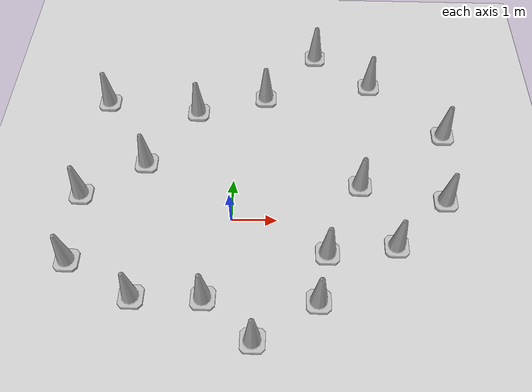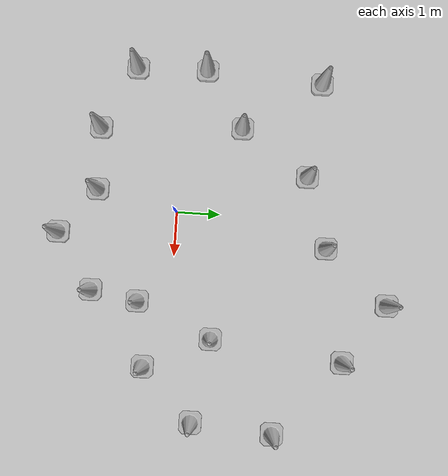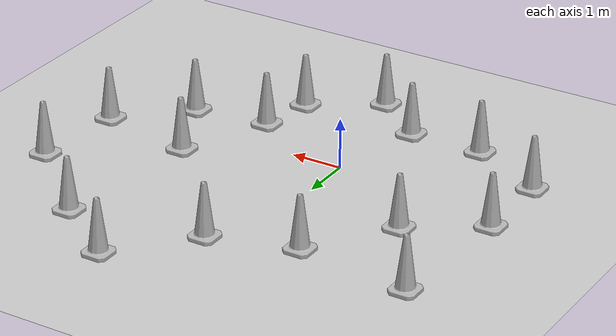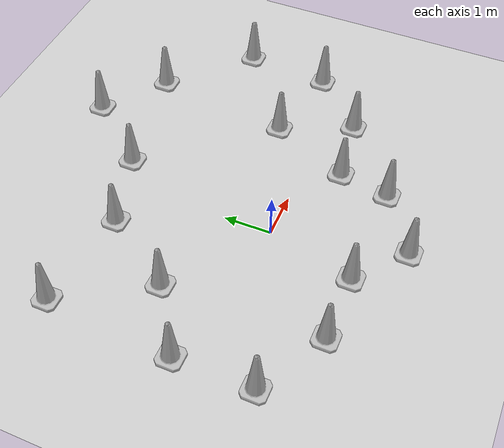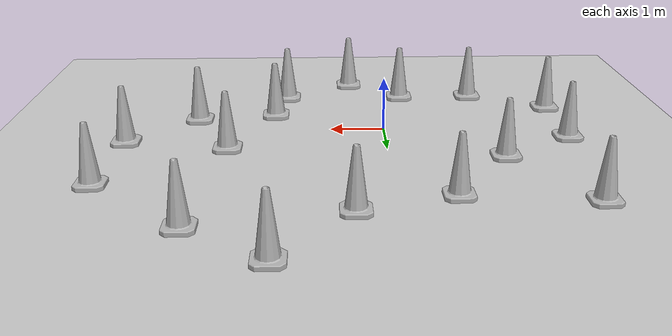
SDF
<sdf version="1.7">
 <world name="default">
  <light name="sun" type="directional">
   <pose>0 0 10 0 -0 0</pose>
   <diffuse>0.8 0.8 0.8 1</diffuse>
   <specular>0.2 0.2 0.2 1</specular>
   <attenuation>
    <range>1000</range>
    <constant>0.9</constant>
    <linear>0.01</linear>
    <quadratic>0.001</quadratic>
   </attenuation>
   <direction>-0.5 0.1 -0.9</direction>
   <spot><inner_angle>0</inner_angle><outer_angle>0</outer_angle><falloff>0</falloff></spot>
  </light>
  <model name="ground_plane">
   <static>1</static>
   <link name="link">
    <collision name="collision">
     <geometry><plane><normal>0 0 1</normal><size>100 100</size></plane></geometry>
     <surface>
      <contact><collide_bitmask>65535</collide_bitmask></contact>
      <friction><ode><mu>100</mu><mu2>50</mu2></ode></friction>
     </surface>
    </collision>
    <visual name="visual">
     <cast_shadows>0</cast_shadows>
     <geometry><plane><normal>0 0 1</normal><size>100 100</size></plane></geometry>
     <material>
      <script><uri>file://media/materials/scripts/gazebo.material</uri><name>Gazebo/Grey</name></script>
     </material>
    </visual>
   </link>
  </model>
  <gravity>0 0 -9.8</gravity>
  <magnetic_field>6e-06 2.3e-05 -4.2e-05</magnetic_field>
  <atmosphere type="adiabatic"/>
  <physics type="ode">
   <max_step_size>0.001</max_step_size>
   <real_time_factor>1</real_time_factor>
   <real_time_update_rate>1000</real_time_update_rate>
  </physics>
  <scene><ambient>0.4 0.4 0.4 1</ambient><background>0.7 0.7 0.7 1</background><shadows>1</shadows></scene>
  <audio><device>default</device></audio>
  <spherical_coordinates>
   <surface_model>EARTH_WGS84</surface_model>
   <latitude_deg>0</latitude_deg>
   <longitude_deg>0</longitude_deg>
   <elevation>0</elevation>
   <heading_deg>0</heading_deg>
  </spherical_coordinates>
  <model name="Construction Cone">
   <link name="link">
    <collision name="collision">
     <geometry>
      <mesh><scale>10 10 10</scale><uri>model://construction_cone/meshes/construction_cone.dae</uri></mesh>
     </geometry>
    </collision>
    <visual name="visual">
     <geometry>
      <mesh><scale>10 10 10</scale><uri>model://construction_cone/meshes/construction_cone.dae</uri></mesh>
     </geometry>
    </visual>
    <inertial>
     <inertia><ixx>1</ixx><ixy>0</ixy><ixz>0</ixz><iyy>1</iyy><iyz>0</iyz><izz>1</izz></inertia>
     <mass>1</mass>
    </inertial>
   </link>
   <pose>0.577825 -2.69799 -0 0 -0 0</pose>
  </model>
  <model name="Construction Cone_clone">
   <link name="link">
    <collision name="collision">
     <geometry>
      <mesh><scale>10 10 10</scale><uri>model://construction_cone/meshes/construction_cone.dae</uri></mesh>
     </geometry>
    </collision>
    <visual name="visual">
     <geometry>
      <mesh><scale>10 10 10</scale><uri>model://construction_cone/meshes/construction_cone.dae</uri></mesh>
     </geometry>
    </visual>
    <inertial>
     <inertia><ixx>1</ixx><ixy>0</ixy><ixz>0</ixz><iyy>1</iyy><iyz>0</iyz><izz>1</izz></inertia>
     <mass>1</mass>
    </inertial>
   </link>
   <pose>-1.90719 -1.86126 -0 0 -0 0</pose>
  </model>
  <model name="Construction Cone_clone_0">
   <link name="link">
    <collision name="collision">
     <geometry>
      <mesh><scale>10 10 10</scale><uri>model://construction_cone/meshes/construction_cone.dae</uri></mesh>
     </geometry>
    </collision>
    <visual name="visual">
     <geometry>
      <mesh><scale>10 10 10</scale><uri>model://construction_cone/meshes/construction_cone.dae</uri></mesh>
     </geometry>
    </visual>
    <inertial>
     <inertia><ixx>1</ixx><ixy>0</ixy><ixz>0</ixz><iyy>1</iyy><iyz>0</iyz><izz>1</izz></inertia>
     <mass>1</mass>
    </inertial>
   </link>
   <pose>-2.0434 1.43222 -8e-06 -5e-06 -0 -0</pose>
  </model>
  <model name="Construction Cone_clone_1">
   <link name="link">
    <collision name="collision">
     <geometry>
      <mesh><scale>10 10 10</scale><uri>model://construction_cone/meshes/construction_cone.dae</uri></mesh>
     </geometry>
    </collision>
    <visual name="visual">
     <geometry>
      <mesh><scale>10 10 10</scale><uri>model://construction_cone/meshes/construction_cone.dae</uri></mesh>
     </geometry>
    </visual>
    <inertial>
     <inertia><ixx>1</ixx><ixy>0</ixy><ixz>0</ixz><iyy>1</iyy><iyz>0</iyz><izz>1</izz></inertia>
     <mass>1</mass>
    </inertial>
   </link>
   <pose>1.87533 -1.86092 0 -0 -0 -0</pose>
  </model>
  <model name="Construction Cone_clone_2">
   <link name="link">
    <collision name="collision">
     <geometry>
      <mesh><scale>10 10 10</scale><uri>model://construction_cone/meshes/construction_cone.dae</uri></mesh>
     </geometry>
    </collision>
    <visual name="visual">
     <geometry>
      <mesh><scale>10 10 10</scale><uri>model://construction_cone/meshes/construction_cone.dae</uri></mesh>
     </geometry>
    </visual>
    <inertial>
     <inertia><ixx>1</ixx><ixy>0</ixy><ixz>0</ixz><iyy>1</iyy><iyz>0</iyz><izz>1</izz></inertia>
     <mass>1</mass>
    </inertial>
   </link>
   <pose>2.861 0.933479 -6e-06 -4e-06 0 0</pose>
  </model>
  <model name="Construction Cone_clone_3">
   <link name="link">
    <collision name="collision">
     <geometry>
      <mesh><scale>10 10 10</scale><uri>model://construction_cone/meshes/construction_cone.dae</uri></mesh>
     </geometry>
    </collision>
    <visual name="visual">
     <geometry>
      <mesh><scale>10 10 10</scale><uri>model://construction_cone/meshes/construction_cone.dae</uri></mesh>
     </geometry>
    </visual>
    <inertial>
     <inertia><ixx>1</ixx><ixy>0</ixy><ixz>0</ixz><iyy>1</iyy><iyz>0</iyz><izz>1</izz></inertia>
     <mass>1</mass>
    </inertial>
   </link>
   <pose>-3.37286 -1.08981 -0 0 -1e-06 0</pose>
  </model>
  <model name="Construction Cone_clone_4">
   <link name="link">
    <collision name="collision">
     <geometry>
      <mesh><scale>10 10 10</scale><uri>model://construction_cone/meshes/construction_cone.dae</uri></mesh>
     </geometry>
    </collision>
    <visual name="visual">
     <geometry>
      <mesh><scale>10 10 10</scale><uri>model://construction_cone/meshes/construction_cone.dae</uri></mesh>
     </geometry>
    </visual>
    <inertial>
     <inertia><ixx>1</ixx><ixy>0</ixy><ixz>0</ixz><iyy>1</iyy><iyz>0</iyz><izz>1</izz></inertia>
     <mass>1</mass>
    </inertial>
   </link>
   <pose>-3.3876 0.546983 -6e-06 -4e-06 0 0</pose>
  </model>
  <model name="Construction Cone_clone_5">
   <link name="link">
    <collision name="collision">
     <geometry>
      <mesh><scale>10 10 10</scale><uri>model://construction_cone/meshes/construction_cone.dae</uri></mesh>
     </geometry>
    </collision>
    <visual name="visual">
     <geometry>
      <mesh><scale>10 10 10</scale><uri>model://construction_cone/meshes/construction_cone.dae</uri></mesh>
     </geometry>
    </visual>
    <inertial>
     <inertia><ixx>1</ixx><ixy>0</ixy><ixz>0</ixz><iyy>1</iyy><iyz>0</iyz><izz>1</izz></inertia>
     <mass>1</mass>
    </inertial>
   </link>
   <pose>-0.456909 -1.84995 -0 0 -1e-06 0</pose>
  </model>
  <model name="Construction Cone_clone_6">
   <link name="link">
    <collision name="collision">
     <geometry>
      <mesh><scale>10 10 10</scale><uri>model://construction_cone/meshes/construction_cone.dae</uri></mesh>
     </geometry>
    </collision>
    <visual name="visual">
     <geometry>
      <mesh><scale>10 10 10</scale><uri>model://construction_cone/meshes/construction_cone.dae</uri></mesh>
     </geometry>
    </visual>
    <inertial>
     <inertia><ixx>1</ixx><ixy>0</ixy><ixz>0</ixz><iyy>1</iyy><iyz>0</iyz><izz>1</izz></inertia>
     <mass>1</mass>
    </inertial>
   </link>
   <pose>2.07887 -0.781898 -1e-05 -0 -0 -0</pose>
  </model>
  <model name="Construction Cone_clone_7">
   <link name="link">
    <collision name="collision">
     <geometry>
      <mesh><scale>10 10 10</scale><uri>model://construction_cone/meshes/construction_cone.dae</uri></mesh>
     </geometry>
    </collision>
    <visual name="visual">
     <geometry>
      <mesh><scale>10 10 10</scale><uri>model://construction_cone/meshes/construction_cone.dae</uri></mesh>
     </geometry>
    </visual>
    <inertial>
     <inertia><ixx>1</ixx><ixy>0</ixy><ixz>0</ixz><iyy>1</iyy><iyz>0</iyz><izz>1</izz></inertia>
     <mass>1</mass>
    </inertial>
   </link>
   <pose>-0.97326 2.98904 -0 0 -1e-06 0</pose>
  </model>
  <model name="Construction Cone_clone_8">
   <link name="link">
    <collision name="collision">
     <geometry>
      <mesh><scale>10 10 10</scale><uri>model://construction_cone/meshes/construction_cone.dae</uri></mesh>
     </geometry>
    </collision>
    <visual name="visual">
     <geometry>
      <mesh><scale>10 10 10</scale><uri>model://construction_cone/meshes/construction_cone.dae</uri></mesh>
     </geometry>
    </visual>
    <inertial>
     <inertia><ixx>1</ixx><ixy>0</ixy><ixz>0</ixz><iyy>1</iyy><iyz>0</iyz><izz>1</izz></inertia>
     <mass>1</mass>
    </inertial>
   </link>
   <pose>3.55155 -0.574671 -0 -0 -0 -0</pose>
  </model>
  <model name="Construction Cone_clone_9">
   <link name="link">
    <collision name="collision">
     <geometry>
      <mesh><scale>10 10 10</scale><uri>model://construction_cone/meshes/construction_cone.dae</uri></mesh>
     </geometry>
    </collision>
    <visual name="visual">
     <geometry>
      <mesh><scale>10 10 10</scale><uri>model://construction_cone/meshes/construction_cone.dae</uri></mesh>
     </geometry>
    </visual>
    <inertial>
     <inertia><ixx>1</ixx><ixy>0</ixy><ixz>0</ixz><iyy>1</iyy><iyz>0</iyz><izz>1</izz></inertia>
     <mass>1</mass>
    </inertial>
   </link>
   <pose>0.664199 3.48047 -0 0 -0 0</pose>
  </model>
  <model name="Construction Cone_clone_10">
   <link name="link">
    <collision name="collision">
     <geometry>
      <mesh><scale>10 10 10</scale><uri>model://construction_cone/meshes/construction_cone.dae</uri></mesh>
     </geometry>
    </collision>
    <visual name="visual">
     <geometry>
      <mesh><scale>10 10 10</scale><uri>model://construction_cone/meshes/construction_cone.dae</uri></mesh>
     </geometry>
    </visual>
    <inertial>
     <inertia><ixx>1</ixx><ixy>0</ixy><ixz>0</ixz><iyy>1</iyy><iyz>0</iyz><izz>1</izz></inertia>
     <mass>1</mass>
    </inertial>
   </link>
   <pose>3.23805 3.94163 0 -0 -0 -0</pose>
  </model>
  <model name="Construction Cone_clone_11">
   <link name="link">
    <collision name="collision">
     <geometry>
      <mesh><scale>10 10 10</scale><uri>model://construction_cone/meshes/construction_cone.dae</uri></mesh>
     </geometry>
    </collision>
    <visual name="visual">
     <geometry>
      <mesh><scale>10 10 10</scale><uri>model://construction_cone/meshes/construction_cone.dae</uri></mesh>
     </geometry>
    </visual>
    <inertial>
     <inertia><ixx>1</ixx><ixy>0</ixy><ixz>0</ixz><iyy>1</iyy><iyz>0</iyz><izz>1</izz></inertia>
     <mass>1</mass>
    </inertial>
   </link>
   <pose>4.7398 0.579423 -0 0 -0 0</pose>
  </model>
  <model name="Construction Cone_clone_12">
   <link name="link">
    <collision name="collision">
     <geometry>
      <mesh><scale>10 10 10</scale><uri>model://construction_cone/meshes/construction_cone.dae</uri></mesh>
     </geometry>
    </collision>
    <visual name="visual">
     <geometry>
      <mesh><scale>10 10 10</scale><uri>model://construction_cone/meshes/construction_cone.dae</uri></mesh>
     </geometry>
    </visual>
    <inertial>
     <inertia><ixx>1</ixx><ixy>0</ixy><ixz>0</ixz><iyy>1</iyy><iyz>0</iyz><izz>1</izz></inertia>
     <mass>1</mass>
    </inertial>
   </link>
   <pose>1.89756 4.91285 -0 0 -1e-06 0</pose>
  </model>
  <model name="Construction Cone_clone_13">
   <link name="link">
    <collision name="collision">
     <geometry>
      <mesh><scale>10 10 10</scale><uri>model://construction_cone/meshes/construction_cone.dae</uri></mesh>
     </geometry>
    </collision>
    <visual name="visual">
     <geometry>
      <mesh><scale>10 10 10</scale><uri>model://construction_cone/meshes/construction_cone.dae</uri></mesh>
     </geometry>
    </visual>
    <inertial>
     <inertia><ixx>1</ixx><ixy>0</ixy><ixz>0</ixz><iyy>1</iyy><iyz>0</iyz><izz>1</izz></inertia>
     <mass>1</mass>
    </inertial>
   </link>
   <pose>-3.19356 3.24501 -2e-06 -3e-06 -1e-06 -0</pose>
  </model>
  <model name="Construction Cone_clone_14">
   <link name="link">
    <collision name="collision">
     <geometry>
      <mesh><scale>10 10 10</scale><uri>model://construction_cone/meshes/construction_cone.dae</uri></mesh>
     </geometry>
    </collision>
    <visual name="visual">
     <geometry>
      <mesh><scale>10 10 10</scale><uri>model://construction_cone/meshes/construction_cone.dae</uri></mesh>
     </geometry>
    </visual>
    <inertial>
     <inertia><ixx>1</ixx><ixy>0</ixy><ixz>0</ixz><iyy>1</iyy><iyz>0</iyz><izz>1</izz></inertia>
     <mass>1</mass>
    </inertial>
   </link>
   <pose>4.90363 2.4191 -0 0 -0 0</pose>
  </model>
 </world>
</sdf>
